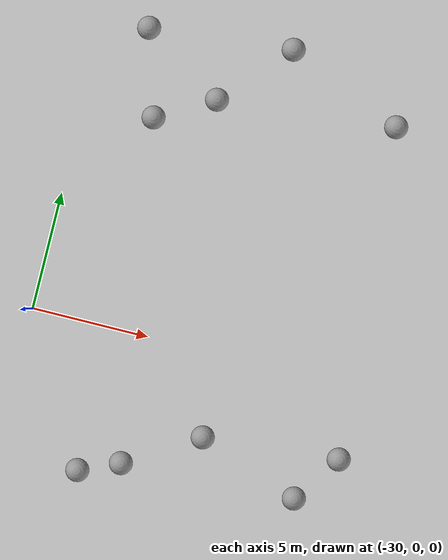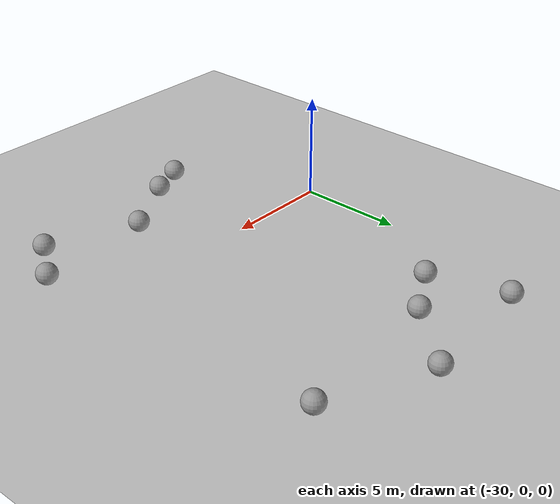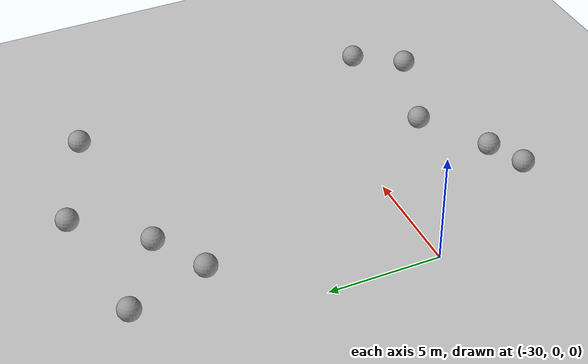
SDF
<sdf version="1.6">
 <world name="default">
  <model name="ground_plane">
   <static>1</static>
   <link name="link">
    <collision name="collision">
     <geometry><plane><normal>0 0 1</normal><size>100 100</size></plane></geometry>
     <surface><friction><ode><mu>100</mu><mu2>50</mu2></ode></friction></surface>
    </collision>
    <visual name="visual">
     <cast_shadows>0</cast_shadows>
     <geometry><plane><normal>0 0 1</normal><size>100 100</size></plane></geometry>
     <material>
      <script><uri>file://media/materials/scripts/gazebo.material</uri><name>Gazebo/Grey</name></script>
     </material>
    </visual>
   </link>
  </model>
  <model name="unit_sphere_0_clone_45">
   <pose>-24.6013 10.3687 0.5 0 -0 0</pose>
   <link name="link">
    <inertial>
     <mass>1</mass>
     <inertia><ixx>0.1</ixx><ixy>0</ixy><ixz>0</ixz><iyy>0.1</iyy><iyz>0</iyz><izz>0.1</izz></inertia>
    </inertial>
    <collision name="collision"><geometry><sphere><radius>0.5</radius></sphere></geometry></collision>
    <visual name="visual">
     <geometry><sphere><radius>0.5</radius></sphere></geometry>
     <material>
      <script><name>Gazebo/Grey</name><uri>file://media/materials/scripts/gazebo.material</uri></script>
     </material>
    </visual>
   </link>
  </model>
  <model name="unit_sphere_0_clone_46">
   <pose>-17.0385 11.0775 0.5 0 -0 0</pose>
   <link name="link">
    <inertial>
     <mass>1</mass>
     <inertia><ixx>0.1</ixx><ixy>0</ixy><ixz>0</ixz><iyy>0.1</iyy><iyz>0</iyz><izz>0.1</izz></inertia>
    </inertial>
    <collision name="collision"><geometry><sphere><radius>0.5</radius></sphere></geometry></collision>
    <visual name="visual">
     <geometry><sphere><radius>0.5</radius></sphere></geometry>
     <material>
      <script><name>Gazebo/Grey</name><uri>file://media/materials/scripts/gazebo.material</uri></script>
     </material>
    </visual>
   </link>
  </model>
  <model name="unit_sphere_0_clone_65">
   <pose>-24.7963 -5.36295 0.5 0 -0 0</pose>
   <link name="link">
    <inertial>
     <mass>1</mass>
     <inertia><ixx>0.1</ixx><ixy>0</ixy><ixz>0</ixz><iyy>0.1</iyy><iyz>0</iyz><izz>0.1</izz></inertia>
    </inertial>
    <collision name="collision"><geometry><sphere><radius>0.5</radius></sphere></geometry></collision>
    <visual name="visual">
     <geometry><sphere><radius>0.5</radius></sphere></geometry>
     <material>
      <script><name>Gazebo/Grey</name><uri>file://media/materials/scripts/gazebo.material</uri></script>
     </material>
    </visual>
   </link>
  </model>
  <model name="unit_sphere_0_clone_66">
   <pose>-17.4237 -5.03519 0.5 0 -0 0</pose>
   <link name="link">
    <inertial>
     <mass>1</mass>
     <inertia><ixx>0.1</ixx><ixy>0</ixy><ixz>0</ixz><iyy>0.1</iyy><iyz>0</iyz><izz>0.1</izz></inertia>
    </inertial>
    <collision name="collision"><geometry><sphere><radius>0.5</radius></sphere></geometry></collision>
    <visual name="visual">
     <geometry><sphere><radius>0.5</radius></sphere></geometry>
     <material>
      <script><name>Gazebo/Grey</name><uri>file://media/materials/scripts/gazebo.material</uri></script>
     </material>
    </visual>
   </link>
  </model>
  <model name="unit_sphere_0_clone_91">
   <pose>-26.4934 -6.08641 0.5 0 -0 0</pose>
   <link name="link">
    <inertial>
     <mass>1</mass>
     <inertia><ixx>0.1</ixx><ixy>0</ixy><ixz>0</ixz><iyy>0.1</iyy><iyz>0</iyz><izz>0.1</izz></inertia>
    </inertial>
    <collision name="collision"><geometry><sphere><radius>0.5</radius></sphere></geometry></collision>
    <visual name="visual">
     <geometry><sphere><radius>0.5</radius></sphere></geometry>
     <material>
      <script><name>Gazebo/Grey</name><uri>file://media/materials/scripts/gazebo.material</uri></script>
     </material>
    </visual>
   </link>
  </model>
  <model name="unit_sphere_0_clone_92">
   <pose>-21.74 -3.48856 0.5 0 -0 0</pose>
   <link name="link">
    <inertial>
     <mass>1</mass>
     <inertia><ixx>0.1</ixx><ixy>0</ixy><ixz>0</ixz><iyy>0.1</iyy><iyz>0</iyz><izz>0.1</izz></inertia>
    </inertial>
    <collision name="collision"><geometry><sphere><radius>0.5</radius></sphere></geometry></collision>
    <visual name="visual">
     <geometry><sphere><radius>0.5</radius></sphere></geometry>
     <material>
      <script><name>Gazebo/Grey</name><uri>file://media/materials/scripts/gazebo.material</uri></script>
     </material>
    </visual>
   </link>
  </model>
  <model name="unit_sphere_0_clone_94">
   <pose>-16 -3 0.5 0 -0 0</pose>
   <link name="link">
    <inertial>
     <mass>1</mass>
     <inertia><ixx>0.1</ixx><ixy>0</ixy><ixz>0</ixz><iyy>0.1</iyy><iyz>0</iyz><izz>0.1</izz></inertia>
    </inertial>
    <collision name="collision"><geometry><sphere><radius>0.5</radius></sphere></geometry></collision>
    <visual name="visual">
     <geometry><sphere><radius>0.5</radius></sphere></geometry>
     <material>
      <script><name>Gazebo/Grey</name><uri>file://media/materials/scripts/gazebo.material</uri></script>
     </material>
    </visual>
   </link>
  </model>
  <model name="unit_sphere_0_clone_106">
   <pose>-28.0971 12.6052 0.5 0 -0 0</pose>
   <link name="link">
    <inertial>
     <mass>1</mass>
     <inertia><ixx>0.1</ixx><ixy>0</ixy><ixz>0</ixz><iyy>0.1</iyy><iyz>0</iyz><izz>0.1</izz></inertia>
    </inertial>
    <collision name="collision"><geometry><sphere><radius>0.5</radius></sphere></geometry></collision>
    <visual name="visual">
     <geometry><sphere><radius>0.5</radius></sphere></geometry>
     <material>
      <script><name>Gazebo/Grey</name><uri>file://media/materials/scripts/gazebo.material</uri></script>
     </material>
    </visual>
   </link>
  </model>
  <model name="unit_sphere_0_clone_107">
   <pose>-27 9 0.5 0 -0 0</pose>
   <link name="link">
    <inertial>
     <mass>1</mass>
     <inertia><ixx>0.1</ixx><ixy>0</ixy><ixz>0</ixz><iyy>0.1</iyy><iyz>0</iyz><izz>0.1</izz></inertia>
    </inertial>
    <collision name="collision"><geometry><sphere><radius>0.5</radius></sphere></geometry></collision>
    <visual name="visual">
     <geometry><sphere><radius>0.5</radius></sphere></geometry>
     <material>
      <script><name>Gazebo/Grey</name><uri>file://media/materials/scripts/gazebo.material</uri></script>
     </material>
    </visual>
   </link>
  </model>
  <model name="unit_sphere_0_clone_108">
   <pose>-21.996 13.1864 0.5 0 -0 0</pose>
   <link name="link">
    <inertial>
     <mass>1</mass>
     <inertia><ixx>0.1</ixx><ixy>0</ixy><ixz>0</ixz><iyy>0.1</iyy><iyz>0</iyz><izz>0.1</izz></inertia>
    </inertial>
    <collision name="collision"><geometry><sphere><radius>0.5</radius></sphere></geometry></collision>
    <visual name="visual">
     <geometry><sphere><radius>0.5</radius></sphere></geometry>
     <material>
      <script><name>Gazebo/Grey</name><uri>file://media/materials/scripts/gazebo.material</uri></script>
     </material>
    </visual>
   </link>
  </model>
 </world>
</sdf>
